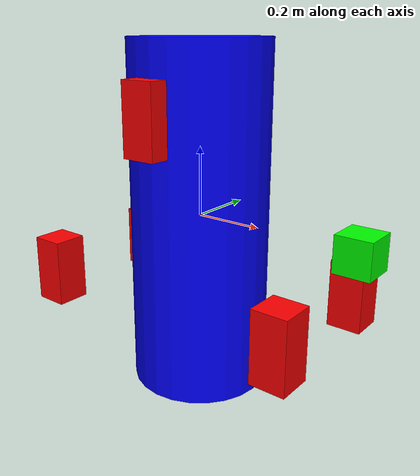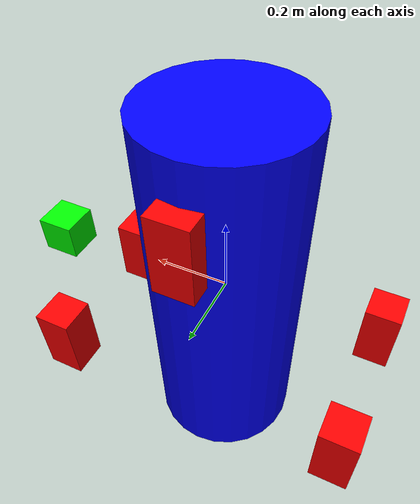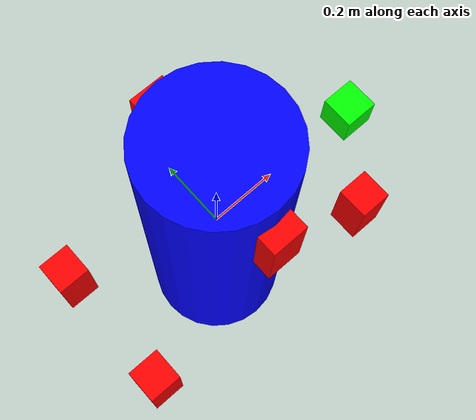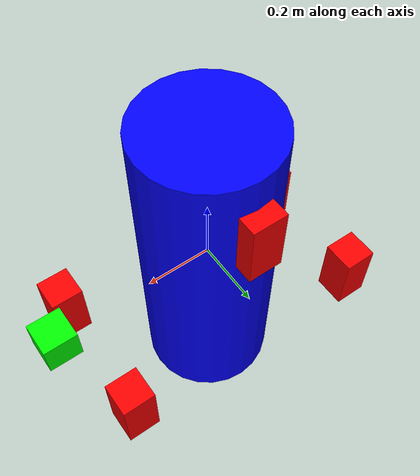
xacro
<?xml version="1.0"?>
<robot xmlns:xacro="http://www.ros.org/wiki/xacro" name="auv">

  <!-- Main body -->
  <link name="base_link">
    <inertial>
      <origin xyz="0 0 0" />
      <mass value="30.0" />
      <inertia ixx="2.0" ixy="0.0" ixz="0.0" iyy="2.0" iyz="0.0" izz="2.0" />
    </inertial>
    <visual>
      <geometry>
        <cylinder length="1.0" radius="0.2" />
      </geometry>
      <material name="blue">
        <color rgba="0 0 1 1" />
      </material>
    </visual>
    <collision>
      <geometry>
        <cylinder length="1.0" radius="0.2" />
      </geometry>
    </collision>
  </link>

  <!-- Thrusters -->
  <xacro:property name="thruster_mass" value="1.0"/>
  <xacro:macro name="thruster" params="name xyz rpy">
    <link name="${name}">
      <inertial>
        <origin xyz="0 0 0" />
        <mass value="${thruster_mass}" />
        <inertia ixx="0.01" ixy="0" ixz="0" iyy="0.01" iyz="0" izz="0.01" />
      </inertial>
      <visual>
        <geometry>
          <box size="0.1 0.1 0.2" />
        </geometry>
        <material name="red">
          <color rgba="1 0 0 1" />
        </material>
      </visual>
      <collision>
        <geometry>
          <box size="0.1 0.1 0.2" />
        </geometry>
      </collision>
    </link>
    <joint name="${name}_joint" type="fixed">
      <parent link="base_link" />
      <child link="${name}" />
      <origin xyz="${xyz}" rpy="${rpy}" />
    </joint>
  </xacro:macro>

  <!-- Adding six thrusters -->
  <xacro:thruster name="thruster_front_left" xyz="0.4 0.2 -0.2" rpy="0 0 0" />
  <xacro:thruster name="thruster_front_right" xyz="0.4 -0.2 -0.2" rpy="0 0 0" />
  <xacro:thruster name="thruster_back_left" xyz="-0.4 0.2 -0.2" rpy="0 0 0" />
  <xacro:thruster name="thruster_back_right" xyz="-0.4 -0.2 -0.2" rpy="0 0 0" />
  <xacro:thruster name="thruster_top_left" xyz="0 0.2 0.3" rpy="0 0 0" />
  <xacro:thruster name="thruster_top_right" xyz="0 -0.2 0.3" rpy="0 0 0" />

  <!-- Sensors -->
  <xacro:macro name="sensor" params="name xyz rpy type geometry">
    <link name="${name}">
      <visual>
        <geometry>
          <!-- Handle geometry type dynamically -->
          <xacro:if value="${geometry == 'box'}">
            <box size="0.1 0.1 0.1"/>
          </xacro:if>
          <xacro:if value="${geometry == 'sphere'}">
            <sphere radius="0.05"/>
          </xacro:if>
          <xacro:if value="${geometry == 'cylinder'}">
            <cylinder length="0.1" radius="0.05"/>
          </xacro:if>
        </geometry>
        <material name="green">
          <color rgba="0 1 0 1" />
        </material>
      </visual>
    </link>
    <joint name="${name}_joint" type="fixed">
      <parent link="base_link" />
      <child link="${name}" />
      <origin xyz="${xyz}" rpy="${rpy}" />
    </joint>
  </xacro:macro>

  <!-- Adding sensors -->
  <xacro:sensor name="imu" xyz="0 0 0" rpy="0 0 0" type="imu" geometry="box"/>
  <xacro:sensor name="camera" xyz="0.5 0 0" rpy="0 0 0" type="camera" geometry="box"/>
  <xacro:sensor name="pressure_sensor" xyz="0 0 -0.5" rpy="0 0 0" type="pressure" geometry="sphere"/>

  <!-- Gazebo Plugin for Velocity Control -->
  <gazebo>
    <plugin name="velocity_controller" filename="libgazebo_ros_velocity_controller.so">
      <ros>
        <namespace>/auv</namespace>
        <remapping>cmd_vel:=/cmd_vel</remapping>
      </ros>
      <body_name>base_link</body_name>
      <cmd_vel_topic>/cmd_vel</cmd_vel_topic>
      <odom_topic>/odom</odom_topic>
      <linear_velocity_max>2.0</linear_velocity_max>
      <angular_velocity_max>1.0</angular_velocity_max>
      <update_rate>50.0</update_rate>
    </plugin>
  </gazebo>
</robot>
